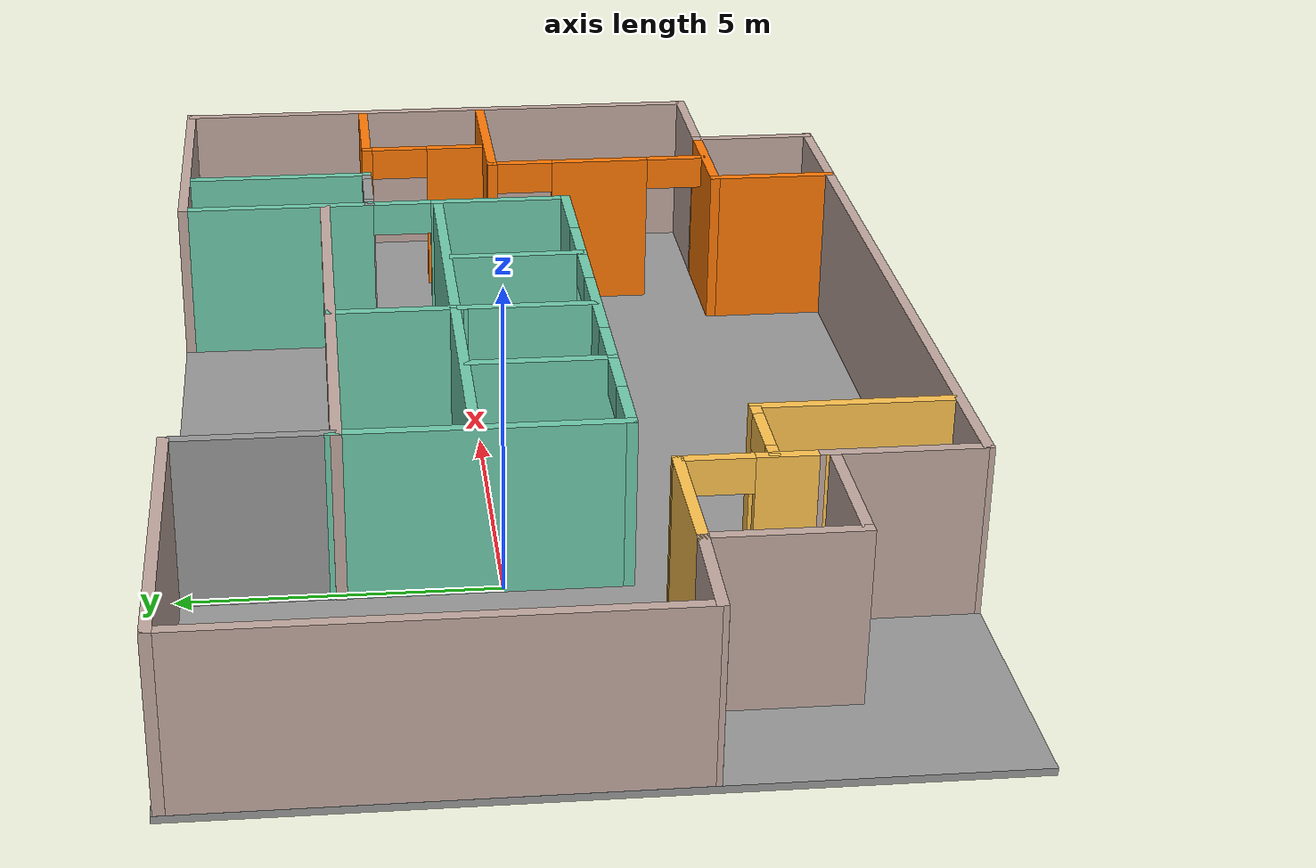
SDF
<?xml version='1.0'?>
<sdf version='1.7'>
  <model name='model'>
    <pose>-0.57091 -0.462357 0 0 -0 0</pose>
    <link name='Door_10'>
      <collision name='Door_10_Collision'>
        <geometry>
          <box>
            <size>0.9 0.17 2</size>
          </box>
        </geometry>
        <pose>0 0 1 0 -0 0</pose>
      </collision>
      <visual name='Door_10_Visual'>
        <pose>0 0 1 0 -0 0</pose>
        <geometry>
          <box>
            <size>0.9 0.17 2</size>
          </box>
        </geometry>
        <material>
          <script>
            <uri>file://media/materials/scripts/gazebo.material</uri>
            <name>Gazebo/Grey</name>
          </script>
        </material>
      </visual>
      <pose>5.27733 -3.39966 2.5 0 -0 0</pose>
    </link>
    <link name='Floor_0'>
      <collision name='Floor_0_Collision'>
        <geometry>
          <box>
            <size>17.0626 10.4754 0.1</size>
          </box>
        </geometry>
        <pose>0 0 0.05 0 -0 0</pose>
      </collision>
      <visual name='Floor_0_Visual'>
        <pose>0 0 0.05 0 -0 0</pose>
        <geometry>
          <box>
            <size>17.0626 10.4754 0.1</size>
          </box>
        </geometry>
        <material>
          <script>
            <uri>file://media/materials/scripts/gazebo.material</uri>
            <name>Gazebo/Grey</name>
          </script>
          <ambient>1 1 1 1</ambient>
        </material>
        <meta>
          <layer>1</layer>
        </meta>
      </visual>
      <pose>-0 -0 2.5 0 -0 0</pose>
    </link>
    <link name='Wall_0'>
      <collision name='Wall_0_Collision'>
        <geometry>
          <box>
            <size>0.75 0.15 2.5</size>
          </box>
        </geometry>
        <pose>0 0 1.25 0 -0 0</pose>
      </collision>
      <visual name='Wall_0_Visual'>
        <pose>0 0 1.25 0 -0 0</pose>
        <geometry>
          <box>
            <size>0.75 0.15 2.5</size>
          </box>
        </geometry>
        <material>
          <script>
            <uri>file://media/materials/scripts/gazebo.material</uri>
            <name>Gazebo/Grey</name>
          </script>
          <ambient>1 1 1 1</ambient>
        </material>
        <meta>
          <layer>0</layer>
        </meta>
      </visual>
      <pose>-3.79492 0.879608 0 0 -0 -1.5708</pose>
    </link>
    <link name='Wall_13'>
      <collision name='Wall_13_Collision'>
        <geometry>
          <box>
            <size>11.7 0.15 2.5</size>
          </box>
        </geometry>
        <pose>0 0 1.25 0 -0 0</pose>
      </collision>
      <visual name='Wall_13_Visual'>
        <pose>0 0 1.25 0 -0 0</pose>
        <geometry>
          <box>
            <size>11.7 0.15 2.5</size>
          </box>
        </geometry>
        <material>
          <script>
            <uri>file://media/materials/scripts/gazebo.material</uri>
            <name>Gazebo/Grey</name>
          </script>
          <ambient>0.760784 0.662745 0.627451 1</ambient>
        </material>
        <meta>
          <layer>1</layer>
        </meta>
      </visual>
      <pose>0.81591 -5.16264 2.5 0 -0 0</pose>
    </link>
    <link name='Wall_16'>
      <collision name='Wall_16_Collision'>
        <geometry>
          <box>
            <size>8.5 0.15 2.5</size>
          </box>
        </geometry>
        <pose>0 0 1.25 0 -0 0</pose>
      </collision>
      <visual name='Wall_16_Visual'>
        <pose>0 0 1.25 0 -0 0</pose>
        <geometry>
          <box>
            <size>8.5 0.15 2.5</size>
          </box>
        </geometry>
        <material>
          <script>
            <uri>file://media/materials/scripts/gazebo.material</uri>
            <name>Gazebo/Grey</name>
          </script>
          <ambient>0.760784 0.662745 0.627451 1</ambient>
        </material>
        <meta>
          <layer>1</layer>
        </meta>
      </visual>
      <pose>8.4387 0.987797 2.5 0 -0 1.5708</pose>
    </link>
    <link name='Wall_23'>
      <pose>4.07111 2.17624 2.5 0 -0 -1.5708</pose>
      <visual name='Wall_23_Visual_0'>
        <pose>-1.54812 0 1.25 0 -0 0</pose>
        <geometry>
          <box>
            <size>3.02688 0.15 2.5</size>
          </box>
        </geometry>
        <material>
          <script>
            <uri>file://media/materials/scripts/gazebo.material</uri>
            <name>Gazebo/Grey</name>
          </script>
          <ambient>0.435294 0.796078 0.67451 1</ambient>
        </material>
        <meta>
          <layer>1</layer>
        </meta>
      </visual>
      <collision name='Wall_23_Collision_0'>
        <geometry>
          <box>
            <size>3.02688 0.15 2.5</size>
          </box>
        </geometry>
        <pose>-1.54812 0 1.25 0 -0 0</pose>
      </collision>
      <visual name='Wall_23_Visual_1'>
        <pose>1.96344 0 1.25 0 -0 0</pose>
        <geometry>
          <box>
            <size>2.19625 0.15 2.5</size>
          </box>
        </geometry>
        <material>
          <script>
            <uri>file://media/materials/scripts/gazebo.material</uri>
            <name>Gazebo/Grey</name>
          </script>
          <ambient>0.435294 0.796078 0.67451 1</ambient>
        </material>
        <meta>
          <layer>1</layer>
        </meta>
      </visual>
      <collision name='Wall_23_Collision_1'>
        <geometry>
          <box>
            <size>2.19625 0.15 2.5</size>
          </box>
        </geometry>
        <pose>1.96344 0 1.25 0 -0 0</pose>
      </collision>
      <visual name='Wall_23_Visual_2'>
        <pose>0.415316 0 2.25 0 -0 0</pose>
        <geometry>
          <box>
            <size>0.9 0.15 0.5</size>
          </box>
        </geometry>
        <material>
          <script>
            <uri>file://media/materials/scripts/gazebo.material</uri>
            <name>Gazebo/Grey</name>
          </script>
          <ambient>0.435294 0.796078 0.67451 1</ambient>
        </material>
        <meta>
          <layer>1</layer>
        </meta>
      </visual>
      <collision name='Wall_23_Collision_2'>
        <geometry>
          <box>
            <size>0.9 0.15 0.5</size>
          </box>
        </geometry>
        <pose>0.415316 0 2.25 0 -0 0</pose>
      </collision>
    </link>
    <link name='Wall_24'>
      <pose>0.108093 -0.811273 2.5 0 -0 -3.14135</pose>
      <visual name='Wall_24_Visual_0'>
        <pose>-3.35553 0 1.25 0 -0 0</pose>
        <geometry>
          <box>
            <size>1.3659 0.15 2.5</size>
          </box>
        </geometry>
        <material>
          <script>
            <uri>file://media/materials/scripts/gazebo.material</uri>
            <name>Gazebo/Grey</name>
          </script>
          <ambient>0.435294 0.796078 0.67451 1</ambient>
        </material>
        <meta>
          <layer>1</layer>
        </meta>
      </visual>
      <collision name='Wall_24_Collision_0'>
        <geometry>
          <box>
            <size>1.3659 0.15 2.5</size>
          </box>
        </geometry>
        <pose>-3.35553 0 1.25 0 -0 0</pose>
      </collision>
      <visual name='Wall_24_Visual_1'>
        <pose>-1.69488 0 1.25 0 -0 0</pose>
        <geometry>
          <box>
            <size>0.155401 0.15 2.5</size>
          </box>
        </geometry>
        <material>
          <script>
            <uri>file://media/materials/scripts/gazebo.material</uri>
            <name>Gazebo/Grey</name>
          </script>
          <ambient>0.435294 0.796078 0.67451 1</ambient>
        </material>
        <meta>
          <layer>1</layer>
        </meta>
      </visual>
      <collision name='Wall_24_Collision_1'>
        <geometry>
          <box>
            <size>0.155401 0.15 2.5</size>
          </box>
        </geometry>
        <pose>-1.69488 0 1.25 0 -0 0</pose>
      </collision>
      <visual name='Wall_24_Visual_2'>
        <pose>0.169589 0 1.25 0 -0 0</pose>
        <geometry>
          <box>
            <size>1.77353 0.15 2.5</size>
          </box>
        </geometry>
        <material>
          <script>
            <uri>file://media/materials/scripts/gazebo.material</uri>
            <name>Gazebo/Grey</name>
          </script>
          <ambient>0.435294 0.796078 0.67451 1</ambient>
        </material>
        <meta>
          <layer>1</layer>
        </meta>
      </visual>
      <collision name='Wall_24_Collision_2'>
        <geometry>
          <box>
            <size>1.77353 0.15 2.5</size>
          </box>
        </geometry>
        <pose>0.169589 0 1.25 0 -0 0</pose>
      </collision>
      <visual name='Wall_24_Visual_3'>
        <pose>2.00767 0 1.25 0 -0 0</pose>
        <geometry>
          <box>
            <size>0.102624 0.15 2.5</size>
          </box>
        </geometry>
        <material>
          <script>
            <uri>file://media/materials/scripts/gazebo.material</uri>
            <name>Gazebo/Grey</name>
          </script>
          <ambient>0.435294 0.796078 0.67451 1</ambient>
        </material>
        <meta>
          <layer>1</layer>
        </meta>
      </visual>
      <collision name='Wall_24_Collision_3'>
        <geometry>
          <box>
            <size>0.102624 0.15 2.5</size>
          </box>
        </geometry>
        <pose>2.00767 0 1.25 0 -0 0</pose>
      </collision>
      <visual name='Wall_24_Visual_4'>
        <pose>3.49873 0 1.25 0 -0 0</pose>
        <geometry>
          <box>
            <size>1.0795 0.15 2.5</size>
          </box>
        </geometry>
        <material>
          <script>
            <uri>file://media/materials/scripts/gazebo.material</uri>
            <name>Gazebo/Grey</name>
          </script>
          <ambient>0.435294 0.796078 0.67451 1</ambient>
        </material>
        <meta>
          <layer>1</layer>
        </meta>
      </visual>
      <collision name='Wall_24_Collision_4'>
        <geometry>
          <box>
            <size>1.0795 0.15 2.5</size>
          </box>
        </geometry>
        <pose>3.49873 0 1.25 0 -0 0</pose>
      </collision>
      <visual name='Wall_24_Visual_5'>
        <pose>-2.22258 0 2.25 0 -0 0</pose>
        <geometry>
          <box>
            <size>0.9 0.15 0.5</size>
          </box>
        </geometry>
        <material>
          <script>
            <uri>file://media/materials/scripts/gazebo.material</uri>
            <name>Gazebo/Grey</name>
          </script>
          <ambient>0.435294 0.796078 0.67451 1</ambient>
        </material>
        <meta>
          <layer>1</layer>
        </meta>
      </visual>
      <collision name='Wall_24_Collision_5'>
        <geometry>
          <box>
            <size>0.9 0.15 0.5</size>
          </box>
        </geometry>
        <pose>-2.22258 0 2.25 0 -0 0</pose>
      </collision>
      <visual name='Wall_24_Visual_6'>
        <pose>-1.16718 0 2.25 0 -0 0</pose>
        <geometry>
          <box>
            <size>0.9 0.15 0.5</size>
          </box>
        </geometry>
        <material>
          <script>
            <uri>file://media/materials/scripts/gazebo.material</uri>
            <name>Gazebo/Grey</name>
          </script>
          <ambient>0.435294 0.796078 0.67451 1</ambient>
        </material>
        <meta>
          <layer>1</layer>
        </meta>
      </visual>
      <collision name='Wall_24_Collision_6'>
        <geometry>
          <box>
            <size>0.9 0.15 0.5</size>
          </box>
        </geometry>
        <pose>-1.16718 0 2.25 0 -0 0</pose>
      </collision>
      <visual name='Wall_24_Visual_7'>
        <pose>1.50636 0 2.25 0 -0 0</pose>
        <geometry>
          <box>
            <size>0.9 0.15 0.5</size>
          </box>
        </geometry>
        <material>
          <script>
            <uri>file://media/materials/scripts/gazebo.material</uri>
            <name>Gazebo/Grey</name>
          </script>
          <ambient>0.435294 0.796078 0.67451 1</ambient>
        </material>
        <meta>
          <layer>1</layer>
        </meta>
      </visual>
      <collision name='Wall_24_Collision_7'>
        <geometry>
          <box>
            <size>0.9 0.15 0.5</size>
          </box>
        </geometry>
        <pose>1.50636 0 2.25 0 -0 0</pose>
      </collision>
      <visual name='Wall_24_Visual_8'>
        <pose>2.50898 0 2.25 0 -0 0</pose>
        <geometry>
          <box>
            <size>0.9 0.15 0.5</size>
          </box>
        </geometry>
        <material>
          <script>
            <uri>file://media/materials/scripts/gazebo.material</uri>
            <name>Gazebo/Grey</name>
          </script>
          <ambient>0.435294 0.796078 0.67451 1</ambient>
        </material>
        <meta>
          <layer>1</layer>
        </meta>
      </visual>
      <collision name='Wall_24_Collision_8'>
        <geometry>
          <box>
            <size>0.9 0.15 0.5</size>
          </box>
        </geometry>
        <pose>2.50898 0 2.25 0 -0 0</pose>
      </collision>
    </link>
    <link name='Wall_30'>
      <collision name='Wall_30_Collision'>
        <geometry>
          <box>
            <size>2.04563 0.15 2.5</size>
          </box>
        </geometry>
        <pose>0 0 1.25 0 -0 0</pose>
      </collision>
      <visual name='Wall_30_Visual'>
        <pose>0 0 1.25 0 -0 0</pose>
        <geometry>
          <box>
            <size>2.04563 0.15 2.5</size>
          </box>
        </geometry>
        <material>
          <script>
            <uri>file://media/materials/scripts/gazebo.material</uri>
            <name>Gazebo/Grey</name>
          </script>
          <ambient>0.435294 0.796078 0.67451 1</ambient>
        </material>
        <meta>
          <layer>1</layer>
        </meta>
      </visual>
      <pose>-1.91909 0.184357 2.5 0 -0 -1.5708</pose>
    </link>
    <link name='Wall_33'>
      <collision name='Wall_33_Collision'>
        <geometry>
          <box>
            <size>2.018 0.15 2.5</size>
          </box>
        </geometry>
        <pose>0 0 1.25 0 -0 0</pose>
      </collision>
      <visual name='Wall_33_Visual'>
        <pose>0 0 1.25 0 -0 0</pose>
        <geometry>
          <box>
            <size>2.018 0.15 2.5</size>
          </box>
        </geometry>
        <material>
          <script>
            <uri>file://media/materials/scripts/gazebo.material</uri>
            <name>Gazebo/Grey</name>
          </script>
          <ambient>0.435294 0.796078 0.67451 1</ambient>
        </material>
        <meta>
          <layer>1</layer>
        </meta>
      </visual>
      <pose>-0.069591 0.169857 2.5 0 -0 -1.57026</pose>
    </link>
    <link name='Wall_36'>
      <collision name='Wall_36_Collision'>
        <geometry>
          <box>
            <size>2 0.15 2.5</size>
          </box>
        </geometry>
        <pose>0 0 1.25 0 -0 0</pose>
      </collision>
      <visual name='Wall_36_Visual'>
        <pose>0 0 1.25 0 -0 0</pose>
        <geometry>
          <box>
            <size>2 0.15 2.5</size>
          </box>
        </geometry>
        <material>
          <script>
            <uri>file://media/materials/scripts/gazebo.material</uri>
            <name>Gazebo/Grey</name>
          </script>
          <ambient>0.435294 0.796078 0.67451 1</ambient>
        </material>
        <meta>
          <layer>1</layer>
        </meta>
      </visual>
      <pose>1.81091 0.161357 2.5 0 -0 -1.5708</pose>
    </link>
    <link name='Wall_41'>
      <collision name='Wall_41_Collision'>
        <geometry>
          <box>
            <size>4.53518 0.15 2.5</size>
          </box>
        </geometry>
        <pose>0 0 1.25 0 -0 0</pose>
      </collision>
      <visual name='Wall_41_Visual'>
        <pose>0 0 1.25 0 -0 0</pose>
        <geometry>
          <box>
            <size>4.53518 0.15 2.5</size>
          </box>
        </geometry>
        <material>
          <script>
            <uri>file://media/materials/scripts/gazebo.material</uri>
            <name>Gazebo/Grey</name>
          </script>
          <ambient>0.760784 0.662745 0.627451 1</ambient>
        </material>
        <meta>
          <layer>1</layer>
        </meta>
      </visual>
      <pose>6.2637 5.1628 2.5 0 -0 0</pose>
    </link>
    <link name='Wall_43'>
      <collision name='Wall_43_Collision'>
        <geometry>
          <box>
            <size>8 0.15 2.5</size>
          </box>
        </geometry>
        <pose>0 0 1.25 0 -0 0</pose>
      </collision>
      <visual name='Wall_43_Visual'>
        <pose>0 0 1.25 0 -0 0</pose>
        <geometry>
          <box>
            <size>8 0.15 2.5</size>
          </box>
        </geometry>
        <material>
          <script>
            <uri>file://media/materials/scripts/gazebo.material</uri>
            <name>Gazebo/Grey</name>
          </script>
          <ambient>0.435294 0.796078 0.67451 1</ambient>
        </material>
        <meta>
          <layer>1</layer>
        </meta>
      </visual>
      <pose>0.083377 1.2008 2.5 0 -0 0</pose>
    </link>
    <link name='Wall_45'>
      <collision name='Wall_45_Collision'>
        <geometry>
          <box>
            <size>8 0.15 2.5</size>
          </box>
        </geometry>
        <pose>0 0 1.25 0 -0 0</pose>
      </collision>
      <visual name='Wall_45_Visual'>
        <pose>0 0 1.25 0 -0 0</pose>
        <geometry>
          <box>
            <size>8 0.15 2.5</size>
          </box>
        </geometry>
        <material>
          <script>
            <uri>file://media/materials/scripts/gazebo.material</uri>
            <name>Gazebo/Grey</name>
          </script>
          <ambient>0.760784 0.662745 0.627451 1</ambient>
        </material>
        <meta>
          <layer>1</layer>
        </meta>
      </visual>
      <pose>0.05634 2.96381 2.5 0 -0 0</pose>
    </link>
    <link name='Wall_47'>
      <collision name='Wall_47_Collision'>
        <geometry>
          <box>
            <size>2 0.15 2.5</size>
          </box>
        </geometry>
        <pose>0 0 1.25 0 -0 0</pose>
      </collision>
      <visual name='Wall_47_Visual'>
        <pose>0 0 1.25 0 -0 0</pose>
        <geometry>
          <box>
            <size>2 0.15 2.5</size>
          </box>
        </geometry>
        <material>
          <script>
            <uri>file://media/materials/scripts/gazebo.material</uri>
            <name>Gazebo/Grey</name>
          </script>
          <ambient>0.435294 0.796078 0.67451 1</ambient>
        </material>
        <meta>
          <layer>1</layer>
        </meta>
      </visual>
      <pose>-0.07009 2.02836 2.5 0 -0 1.5708</pose>
    </link>
    <link name='Wall_50'>
      <collision name='Wall_50_Collision'>
        <geometry>
          <box>
            <size>2 0.15 2.5</size>
          </box>
        </geometry>
        <pose>0 0 1.25 0 -0 0</pose>
      </collision>
      <visual name='Wall_50_Visual'>
        <pose>0 0 1.25 0 -0 0</pose>
        <geometry>
          <box>
            <size>2 0.15 2.5</size>
          </box>
        </geometry>
        <material>
          <script>
            <uri>file://media/materials/scripts/gazebo.material</uri>
            <name>Gazebo/Grey</name>
          </script>
          <ambient>0.760784 0.662745 0.627451 1</ambient>
        </material>
        <meta>
          <layer>1</layer>
        </meta>
      </visual>
      <pose>-6.91954 -2.28121 2.5 0 -0 -1.5708</pose>
    </link>
    <link name='Wall_53'>
      <collision name='Wall_53_Collision'>
        <geometry>
          <box>
            <size>2 0.15 2.5</size>
          </box>
        </geometry>
        <pose>0 0 1.25 0 -0 0</pose>
      </collision>
      <visual name='Wall_53_Visual'>
        <pose>0 0 1.25 0 -0 0</pose>
        <geometry>
          <box>
            <size>2 0.15 2.5</size>
          </box>
        </geometry>
        <material>
          <script>
            <uri>file://media/materials/scripts/gazebo.material</uri>
            <name>Gazebo/Grey</name>
          </script>
          <ambient>0.760784 0.662745 0.627451 1</ambient>
        </material>
        <meta>
          <layer>1</layer>
        </meta>
      </visual>
      <pose>-5.99454 -3.20621 2.5 0 -0 0</pose>
    </link>
    <link name='Wall_56'>
      <pose>-4.25156 -2.45124 2.5 0 -0 0</pose>
      <visual name='Wall_56_Visual_0'>
        <pose>-0.600511 0 1.25 0 -0 0</pose>
        <geometry>
          <box>
            <size>0.298978 0.15 2.5</size>
          </box>
        </geometry>
        <material>
          <script>
            <uri>file://media/materials/scripts/gazebo.material</uri>
            <name>Gazebo/Grey</name>
          </script>
          <ambient>1 0.764706 0.305882 1</ambient>
        </material>
        <meta>
          <layer>1</layer>
        </meta>
      </visual>
      <collision name='Wall_56_Collision_0'>
        <geometry>
          <box>
            <size>0.298978 0.15 2.5</size>
          </box>
        </geometry>
        <pose>-0.600511 0 1.25 0 -0 0</pose>
      </collision>
      <visual name='Wall_56_Visual_1'>
        <pose>0.599489 0 1.25 0 -0 0</pose>
        <geometry>
          <box>
            <size>0.301022 0.15 2.5</size>
          </box>
        </geometry>
        <material>
          <script>
            <uri>file://media/materials/scripts/gazebo.material</uri>
            <name>Gazebo/Grey</name>
          </script>
          <ambient>1 0.764706 0.305882 1</ambient>
        </material>
        <meta>
          <layer>1</layer>
        </meta>
      </visual>
      <collision name='Wall_56_Collision_1'>
        <geometry>
          <box>
            <size>0.301022 0.15 2.5</size>
          </box>
        </geometry>
        <pose>0.599489 0 1.25 0 -0 0</pose>
      </collision>
      <visual name='Wall_56_Visual_2'>
        <pose>-0.001022 0 2.25 0 -0 0</pose>
        <geometry>
          <box>
            <size>0.9 0.15 0.5</size>
          </box>
        </geometry>
        <material>
          <script>
            <uri>file://media/materials/scripts/gazebo.material</uri>
            <name>Gazebo/Grey</name>
          </script>
          <ambient>1 0.764706 0.305882 1</ambient>
        </material>
        <meta>
          <layer>1</layer>
        </meta>
      </visual>
      <collision name='Wall_56_Collision_2'>
        <geometry>
          <box>
            <size>0.9 0.15 0.5</size>
          </box>
        </geometry>
        <pose>-0.001022 0 2.25 0 -0 0</pose>
      </collision>
    </link>
    <link name='Wall_61'>
      <collision name='Wall_61_Collision'>
        <geometry>
          <box>
            <size>4.75 0.15 2.5</size>
          </box>
        </geometry>
        <pose>0 0 1.25 0 -0 0</pose>
      </collision>
      <visual name='Wall_61_Visual'>
        <pose>0 0 1.25 0 -0 0</pose>
        <geometry>
          <box>
            <size>4.75 0.15 2.5</size>
          </box>
        </geometry>
        <material>
          <script>
            <uri>file://media/materials/scripts/gazebo.material</uri>
            <name>Gazebo/Grey</name>
          </script>
          <ambient>0.760784 0.662745 0.627451 1</ambient>
        </material>
        <meta>
          <layer>1</layer>
        </meta>
      </visual>
      <pose>-6.15493 5.13778 2.5 0 -0 0</pose>
    </link>
    <link name='Wall_63'>
      <collision name='Wall_63_Collision'>
        <geometry>
          <box>
            <size>2 0.15 2.5</size>
          </box>
        </geometry>
        <pose>0 0 1.25 0 -0 0</pose>
      </collision>
      <visual name='Wall_63_Visual'>
        <pose>0 0 1.25 0 -0 0</pose>
        <geometry>
          <box>
            <size>2 0.15 2.5</size>
          </box>
        </geometry>
        <material>
          <script>
            <uri>file://media/materials/scripts/gazebo.material</uri>
            <name>Gazebo/Grey</name>
          </script>
          <ambient>0.760784 0.662745 0.627451 1</ambient>
        </material>
        <meta>
          <layer>1</layer>
        </meta>
      </visual>
      <pose>7.51133 -3.29505 2.5 0 -0 0</pose>
    </link>
    <link name='Wall_68'>
      <collision name='Wall_68_Collision'>
        <geometry>
          <box>
            <size>2 0.15 2.5</size>
          </box>
        </geometry>
        <pose>0 0 1.25 0 -0 0</pose>
      </collision>
      <visual name='Wall_68_Visual'>
        <pose>0 0 1.25 0 -0 0</pose>
        <geometry>
          <box>
            <size>2 0.15 2.5</size>
          </box>
        </geometry>
        <material>
          <script>
            <uri>file://media/materials/scripts/gazebo.material</uri>
            <name>Gazebo/Grey</name>
          </script>
          <ambient>0.760784 0.662745 0.627451 1</ambient>
        </material>
        <meta>
          <layer>1</layer>
        </meta>
      </visual>
      <pose>6.58633 -4.22005 2.5 0 -0 -1.5708</pose>
    </link>
    <link name='Wall_70'>
      <collision name='Wall_70_Collision'>
        <geometry>
          <box>
            <size>2 0.15 2.5</size>
          </box>
        </geometry>
        <pose>0 0 1.25 0 -0 0</pose>
      </collision>
      <visual name='Wall_70_Visual'>
        <pose>0 0 1.25 0 -0 0</pose>
        <geometry>
          <box>
            <size>2 0.15 2.5</size>
          </box>
        </geometry>
        <material>
          <script>
            <uri>file://media/materials/scripts/gazebo.material</uri>
            <name>Gazebo/Grey</name>
          </script>
          <ambient>0.996078 0.47451 0.0196078 1</ambient>
        </material>
        <meta>
          <layer>1</layer>
        </meta>
      </visual>
      <pose>5.66133 -3.29505 2.5 0 -0 3.14159</pose>
    </link>
    <link name='Wall_71'>
      <collision name='Wall_71_Collision'>
        <geometry>
          <box>
            <size>2 0.15 2.5</size>
          </box>
        </geometry>
        <pose>0 0 1.25 0 -0 0</pose>
      </collision>
      <visual name='Wall_71_Visual'>
        <pose>0 0 1.25 0 -0 0</pose>
        <geometry>
          <box>
            <size>2 0.15 2.5</size>
          </box>
        </geometry>
        <material>
          <script>
            <uri>file://media/materials/scripts/gazebo.material</uri>
            <name>Gazebo/Grey</name>
          </script>
          <ambient>0.996078 0.47451 0.0196078 1</ambient>
        </material>
        <meta>
          <layer>1</layer>
        </meta>
      </visual>
      <pose>4.73633 -4.22005 2.5 0 -0 -1.5708</pose>
    </link>
    <link name='Wall_76'>
      <pose>5.70517 -1.49661 2.5 0 -0 1.5708</pose>
      <visual name='Wall_76_Visual_0'>
        <pose>-1.76058 0 1.25 0 -0 0</pose>
        <geometry>
          <box>
            <size>0.062597 0.15 2.5</size>
          </box>
        </geometry>
        <material>
          <script>
            <uri>file://media/materials/scripts/gazebo.material</uri>
            <name>Gazebo/Grey</name>
          </script>
          <ambient>0.996078 0.47451 0.0196078 1</ambient>
        </material>
        <meta>
          <layer>1</layer>
        </meta>
      </visual>
      <collision name='Wall_76_Collision_0'>
        <geometry>
          <box>
            <size>0.062597 0.15 2.5</size>
          </box>
        </geometry>
        <pose>-1.76058 0 1.25 0 -0 0</pose>
      </collision>
      <visual name='Wall_76_Visual_1'>
        <pose>-0.048024 0 1.25 0 -0 0</pose>
        <geometry>
          <box>
            <size>1.56251 0.15 2.5</size>
          </box>
        </geometry>
        <material>
          <script>
            <uri>file://media/materials/scripts/gazebo.material</uri>
            <name>Gazebo/Grey</name>
          </script>
          <ambient>0.996078 0.47451 0.0196078 1</ambient>
        </material>
        <meta>
          <layer>1</layer>
        </meta>
      </visual>
      <collision name='Wall_76_Collision_1'>
        <geometry>
          <box>
            <size>1.56251 0.15 2.5</size>
          </box>
        </geometry>
        <pose>-0.048024 0 1.25 0 -0 0</pose>
      </collision>
      <visual name='Wall_76_Visual_2'>
        <pose>1.71256 0 1.25 0 -0 0</pose>
        <geometry>
          <box>
            <size>0.158645 0.15 2.5</size>
          </box>
        </geometry>
        <material>
          <script>
            <uri>file://media/materials/scripts/gazebo.material</uri>
            <name>Gazebo/Grey</name>
          </script>
          <ambient>0.996078 0.47451 0.0196078 1</ambient>
        </material>
        <meta>
          <layer>1</layer>
        </meta>
      </visual>
      <collision name='Wall_76_Collision_2'>
        <geometry>
          <box>
            <size>0.158645 0.15 2.5</size>
          </box>
        </geometry>
        <pose>1.71256 0 1.25 0 -0 0</pose>
      </collision>
      <visual name='Wall_76_Visual_3'>
        <pose>-1.27928 0 2.25 0 -0 0</pose>
        <geometry>
          <box>
            <size>0.9 0.15 0.5</size>
          </box>
        </geometry>
        <material>
          <script>
            <uri>file://media/materials/scripts/gazebo.material</uri>
            <name>Gazebo/Grey</name>
          </script>
          <ambient>0.996078 0.47451 0.0196078 1</ambient>
        </material>
        <meta>
          <layer>1</layer>
        </meta>
      </visual>
      <collision name='Wall_76_Collision_3'>
        <geometry>
          <box>
            <size>0.9 0.15 0.5</size>
          </box>
        </geometry>
        <pose>-1.27928 0 2.25 0 -0 0</pose>
      </collision>
      <visual name='Wall_76_Visual_4'>
        <pose>1.18323 0 2.25 0 -0 0</pose>
        <geometry>
          <box>
            <size>0.9 0.15 0.5</size>
          </box>
        </geometry>
        <material>
          <script>
            <uri>file://media/materials/scripts/gazebo.material</uri>
            <name>Gazebo/Grey</name>
          </script>
          <ambient>0.996078 0.47451 0.0196078 1</ambient>
        </material>
        <meta>
          <layer>1</layer>
        </meta>
      </visual>
      <collision name='Wall_76_Collision_4'>
        <geometry>
          <box>
            <size>0.9 0.15 0.5</size>
          </box>
        </geometry>
        <pose>1.18323 0 2.25 0 -0 0</pose>
      </collision>
    </link>
    <link name='Wall_77'>
      <collision name='Wall_77_Collision'>
        <geometry>
          <box>
            <size>2.75 0.15 2.5</size>
          </box>
        </geometry>
        <pose>0 0 1.25 0 -0 0</pose>
      </collision>
      <visual name='Wall_77_Visual'>
        <pose>0 0 1.25 0 -0 0</pose>
        <geometry>
          <box>
            <size>2.75 0.15 2.5</size>
          </box>
        </geometry>
        <material>
          <script>
            <uri>file://media/materials/scripts/gazebo.material</uri>
            <name>Gazebo/Grey</name>
          </script>
          <ambient>0.996078 0.47451 0.0196078 1</ambient>
        </material>
        <meta>
          <layer>1</layer>
        </meta>
      </visual>
      <pose>7.00517 0.220269 2.5 0 -0 0</pose>
    </link>
    <link name='Wall_79'>
      <pose>6.54993 1.31097 2.5 0 -0 1.5708</pose>
      <visual name='Wall_79_Visual_0'>
        <pose>-0.535625 0 1.25 0 -0 0</pose>
        <geometry>
          <box>
            <size>0.92875 0.15 2.5</size>
          </box>
        </geometry>
        <material>
          <script>
            <uri>file://media/materials/scripts/gazebo.material</uri>
            <name>Gazebo/Grey</name>
          </script>
          <ambient>0.996078 0.47451 0.0196078 1</ambient>
        </material>
        <meta>
          <layer>1</layer>
        </meta>
      </visual>
      <collision name='Wall_79_Collision_0'>
        <geometry>
          <box>
            <size>0.92875 0.15 2.5</size>
          </box>
        </geometry>
        <pose>-0.535625 0 1.25 0 -0 0</pose>
      </collision>
      <visual name='Wall_79_Visual_1'>
        <pose>0.914375 0 1.25 0 -0 0</pose>
        <geometry>
          <box>
            <size>0.17125 0.15 2.5</size>
          </box>
        </geometry>
        <material>
          <script>
            <uri>file://media/materials/scripts/gazebo.material</uri>
            <name>Gazebo/Grey</name>
          </script>
          <ambient>0.996078 0.47451 0.0196078 1</ambient>
        </material>
        <meta>
          <layer>1</layer>
        </meta>
      </visual>
      <collision name='Wall_79_Collision_1'>
        <geometry>
          <box>
            <size>0.17125 0.15 2.5</size>
          </box>
        </geometry>
        <pose>0.914375 0 1.25 0 -0 0</pose>
      </collision>
      <visual name='Wall_79_Visual_2'>
        <pose>0.37875 0 2.25 0 -0 0</pose>
        <geometry>
          <box>
            <size>0.9 0.15 0.5</size>
          </box>
        </geometry>
        <material>
          <script>
            <uri>file://media/materials/scripts/gazebo.material</uri>
            <name>Gazebo/Grey</name>
          </script>
          <ambient>0.996078 0.47451 0.0196078 1</ambient>
        </material>
        <meta>
          <layer>1</layer>
        </meta>
      </visual>
      <collision name='Wall_79_Collision_2'>
        <geometry>
          <box>
            <size>0.9 0.15 0.5</size>
          </box>
        </geometry>
        <pose>0.37875 0 2.25 0 -0 0</pose>
      </collision>
    </link>
    <link name='Wall_80'>
      <collision name='Wall_80_Collision'>
        <geometry>
          <box>
            <size>1.95412 0.15 2.5</size>
          </box>
        </geometry>
        <pose>0 0 1.25 0 -0 0</pose>
      </collision>
      <visual name='Wall_80_Visual'>
        <pose>0 0 1.25 0 -0 0</pose>
        <geometry>
          <box>
            <size>1.95412 0.15 2.5</size>
          </box>
        </geometry>
        <material>
          <script>
            <uri>file://media/materials/scripts/gazebo.material</uri>
            <name>Gazebo/Grey</name>
          </script>
          <ambient>0.996078 0.47451 0.0196078 1</ambient>
        </material>
        <meta>
          <layer>1</layer>
        </meta>
      </visual>
      <pose>7.46728 2.23597 2.5 0 -0 0</pose>
    </link>
    <link name='Wall_84'>
      <collision name='Wall_84_Collision'>
        <geometry>
          <box>
            <size>3 0.15 2.5</size>
          </box>
        </geometry>
        <pose>0 0 1.25 0 -0 0</pose>
      </collision>
      <visual name='Wall_84_Visual'>
        <pose>0 0 1.25 0 -0 0</pose>
        <geometry>
          <box>
            <size>3 0.15 2.5</size>
          </box>
        </geometry>
        <material>
          <script>
            <uri>file://media/materials/scripts/gazebo.material</uri>
            <name>Gazebo/Grey</name>
          </script>
          <ambient>0.435294 0.796078 0.67451 1</ambient>
        </material>
        <meta>
          <layer>1</layer>
        </meta>
      </visual>
      <pose>5.38388 3.69451 2.5 0 -0 -1.57077</pose>
    </link>
    <link name='Wall_85'>
      <pose>4.73391 2.26936 2.5 0 -0 3.14159</pose>
      <visual name='Wall_85_Visual_0'>
        <pose>-0.581944 0 1.25 0 -0 0</pose>
        <geometry>
          <box>
            <size>0.286112 0.15 2.5</size>
          </box>
        </geometry>
        <material>
          <script>
            <uri>file://media/materials/scripts/gazebo.material</uri>
            <name>Gazebo/Grey</name>
          </script>
          <ambient>1 1 1 1</ambient>
        </material>
        <meta>
          <layer>1</layer>
        </meta>
      </visual>
      <collision name='Wall_85_Collision_0'>
        <geometry>
          <box>
            <size>0.286112 0.15 2.5</size>
          </box>
        </geometry>
        <pose>-0.581944 0 1.25 0 -0 0</pose>
      </collision>
      <visual name='Wall_85_Visual_1'>
        <pose>0.593056 0 1.25 0 -0 0</pose>
        <geometry>
          <box>
            <size>0.263888 0.15 2.5</size>
          </box>
        </geometry>
        <material>
          <script>
            <uri>file://media/materials/scripts/gazebo.material</uri>
            <name>Gazebo/Grey</name>
          </script>
          <ambient>1 1 1 1</ambient>
        </material>
        <meta>
          <layer>1</layer>
        </meta>
      </visual>
      <collision name='Wall_85_Collision_1'>
        <geometry>
          <box>
            <size>0.263888 0.15 2.5</size>
          </box>
        </geometry>
        <pose>0.593056 0 1.25 0 -0 0</pose>
      </collision>
      <visual name='Wall_85_Visual_2'>
        <pose>0.011112 0 2.25 0 -0 0</pose>
        <geometry>
          <box>
            <size>0.9 0.15 0.5</size>
          </box>
        </geometry>
        <material>
          <script>
            <uri>file://media/materials/scripts/gazebo.material</uri>
            <name>Gazebo/Grey</name>
          </script>
          <ambient>1 1 1 1</ambient>
        </material>
        <meta>
          <layer>1</layer>
        </meta>
      </visual>
      <collision name='Wall_85_Collision_2'>
        <geometry>
          <box>
            <size>0.9 0.15 0.5</size>
          </box>
        </geometry>
        <pose>0.011112 0 2.25 0 -0 0</pose>
      </collision>
    </link>
    <link name='Wall_87'>
      <collision name='Wall_87_Collision'>
        <geometry>
          <box>
            <size>2.75 0.15 2.5</size>
          </box>
        </geometry>
        <pose>0 0 1.25 0 -0 0</pose>
      </collision>
      <visual name='Wall_87_Visual'>
        <pose>0 0 1.25 0 -0 0</pose>
        <geometry>
          <box>
            <size>2.75 0.15 2.5</size>
          </box>
        </geometry>
        <material>
          <script>
            <uri>file://media/materials/scripts/gazebo.material</uri>
            <name>Gazebo/Grey</name>
          </script>
          <ambient>1 0.764706 0.305882 1</ambient>
        </material>
        <meta>
          <layer>1</layer>
        </meta>
      </visual>
      <pose>-3.57656 -3.75124 2.5 0 -0 -1.5708</pose>
    </link>
    <link name='Wall_89'>
      <pose>-4.96337 -2.1642 2.5 0 -0 -1.5708</pose>
      <visual name='Wall_89_Visual_0'>
        <pose>-0.927185 0 1.25 0 -0 0</pose>
        <geometry>
          <box>
            <size>0.145631 0.15 2.5</size>
          </box>
        </geometry>
        <material>
          <script>
            <uri>file://media/materials/scripts/gazebo.material</uri>
            <name>Gazebo/Grey</name>
          </script>
          <ambient>1 0.764706 0.305882 1</ambient>
        </material>
        <meta>
          <layer>1</layer>
        </meta>
      </visual>
      <collision name='Wall_89_Collision_0'>
        <geometry>
          <box>
            <size>0.145631 0.15 2.5</size>
          </box>
        </geometry>
        <pose>-0.927185 0 1.25 0 -0 0</pose>
      </collision>
      <visual name='Wall_89_Visual_1'>
        <pose>0.522815 0 1.25 0 -0 0</pose>
        <geometry>
          <box>
            <size>0.954369 0.15 2.5</size>
          </box>
        </geometry>
        <material>
          <script>
            <uri>file://media/materials/scripts/gazebo.material</uri>
            <name>Gazebo/Grey</name>
          </script>
          <ambient>1 0.764706 0.305882 1</ambient>
        </material>
        <meta>
          <layer>1</layer>
        </meta>
      </visual>
      <collision name='Wall_89_Collision_1'>
        <geometry>
          <box>
            <size>0.954369 0.15 2.5</size>
          </box>
        </geometry>
        <pose>0.522815 0 1.25 0 -0 0</pose>
      </collision>
      <visual name='Wall_89_Visual_2'>
        <pose>-0.404369 0 2.25 0 -0 0</pose>
        <geometry>
          <box>
            <size>0.9 0.15 0.5</size>
          </box>
        </geometry>
        <material>
          <script>
            <uri>file://media/materials/scripts/gazebo.material</uri>
            <name>Gazebo/Grey</name>
          </script>
          <ambient>1 0.764706 0.305882 1</ambient>
        </material>
        <meta>
          <layer>1</layer>
        </meta>
      </visual>
      <collision name='Wall_89_Collision_2'>
        <geometry>
          <box>
            <size>0.9 0.15 0.5</size>
          </box>
        </geometry>
        <pose>-0.404369 0 2.25 0 -0 0</pose>
      </collision>
    </link>
    <link name='Wall_9'>
      <collision name='Wall_9_Collision'>
        <geometry>
          <box>
            <size>6.5 0.15 2.5</size>
          </box>
        </geometry>
        <pose>0 0 1.25 0 -0 0</pose>
      </collision>
      <visual name='Wall_9_Visual'>
        <pose>0 0 1.25 0 -0 0</pose>
        <geometry>
          <box>
            <size>6.5 0.15 2.5</size>
          </box>
        </geometry>
        <material>
          <script>
            <uri>file://media/materials/scripts/gazebo.material</uri>
            <name>Gazebo/Grey</name>
          </script>
          <ambient>0.760784 0.662745 0.627451 1</ambient>
        </material>
        <meta>
          <layer>1</layer>
        </meta>
      </visual>
      <pose>-8.45493 1.96278 2.5 0 -0 -1.5708</pose>
    </link>
    <link name='Wall_90'>
      <collision name='Wall_90_Collision'>
        <geometry>
          <box>
            <size>2.22344 0.15 2.5</size>
          </box>
        </geometry>
        <pose>0 0 1.25 0 -0 0</pose>
      </collision>
      <visual name='Wall_90_Visual'>
        <pose>0 0 1.25 0 -0 0</pose>
        <geometry>
          <box>
            <size>2.22344 0.15 2.5</size>
          </box>
        </geometry>
        <material>
          <script>
            <uri>file://media/materials/scripts/gazebo.material</uri>
            <name>Gazebo/Grey</name>
          </script>
          <ambient>0.760784 0.662745 0.627451 1</ambient>
        </material>
        <meta>
          <layer>1</layer>
        </meta>
      </visual>
      <pose>-4.96123 -4.12592 2.5 0 -0 -1.56873</pose>
    </link>
    <link name='Wall_93'>
      <collision name='Wall_93_Collision'>
        <geometry>
          <box>
            <size>2.14972 0.15 2.5</size>
          </box>
        </geometry>
        <pose>0 0 1.25 0 -0 0</pose>
      </collision>
      <visual name='Wall_93_Visual'>
        <pose>0 0 1.25 0 -0 0</pose>
        <geometry>
          <box>
            <size>2.14972 0.15 2.5</size>
          </box>
        </geometry>
        <material>
          <script>
            <uri>file://media/materials/scripts/gazebo.material</uri>
            <name>Gazebo/Grey</name>
          </script>
          <ambient>1 0.764706 0.305882 1</ambient>
        </material>
        <meta>
          <layer>1</layer>
        </meta>
      </visual>
      <pose>-5.96323 -1.23942 2.5 0 -0 0.00022</pose>
    </link>
    <link name='Wall_95'>
      <collision name='Wall_95_Collision'>
        <geometry>
          <box>
            <size>4 0.15 2.5</size>
          </box>
        </geometry>
        <pose>0 0 1.25 0 -0 0</pose>
      </collision>
      <visual name='Wall_95_Visual'>
        <pose>0 0 1.25 0 -0 0</pose>
        <geometry>
          <box>
            <size>4 0.15 2.5</size>
          </box>
        </geometry>
        <material>
          <script>
            <uri>file://media/materials/scripts/gazebo.material</uri>
            <name>Gazebo/Grey</name>
          </script>
          <ambient>0.435294 0.796078 0.67451 1</ambient>
        </material>
        <meta>
          <layer>1</layer>
        </meta>
      </visual>
      <pose>-3.85493 1.11278 2.5 0 -0 1.5708</pose>
    </link>
    <link name='Wall_96'>
      <collision name='Wall_96_Collision'>
        <geometry>
          <box>
            <size>2.25 0.15 2.5</size>
          </box>
        </geometry>
        <pose>0 0 1.25 0 -0 0</pose>
      </collision>
      <visual name='Wall_96_Visual'>
        <pose>0 0 1.25 0 -0 0</pose>
        <geometry>
          <box>
            <size>2.25 0.15 2.5</size>
          </box>
        </geometry>
        <material>
          <script>
            <uri>file://media/materials/scripts/gazebo.material</uri>
            <name>Gazebo/Grey</name>
          </script>
          <ambient>1 1 1 1</ambient>
        </material>
        <meta>
          <layer>1</layer>
        </meta>
      </visual>
      <pose>-3.85493 4.08778 2.5 0 -0 1.5708</pose>
    </link>
    <link name='Wall_99'>
      <collision name='Wall_99_Collision'>
        <geometry>
          <box>
            <size>1.64209 0.15 2.5</size>
          </box>
        </geometry>
        <pose>0 0 1.25 0 -0 0</pose>
      </collision>
      <visual name='Wall_99_Visual'>
        <pose>0 0 1.25 0 -0 0</pose>
        <geometry>
          <box>
            <size>1.64209 0.15 2.5</size>
          </box>
        </geometry>
        <material>
          <script>
            <uri>file://media/materials/scripts/gazebo.material</uri>
            <name>Gazebo/Grey</name>
          </script>
          <ambient>0.760784 0.662745 0.627451 1</ambient>
        </material>
        <meta>
          <layer>1</layer>
        </meta>
      </visual>
      <pose>-7.70901 -1.22593 2.5 0 -0 -0.018382</pose>
    </link>
    <static>1</static>
  </model>
</sdf>
